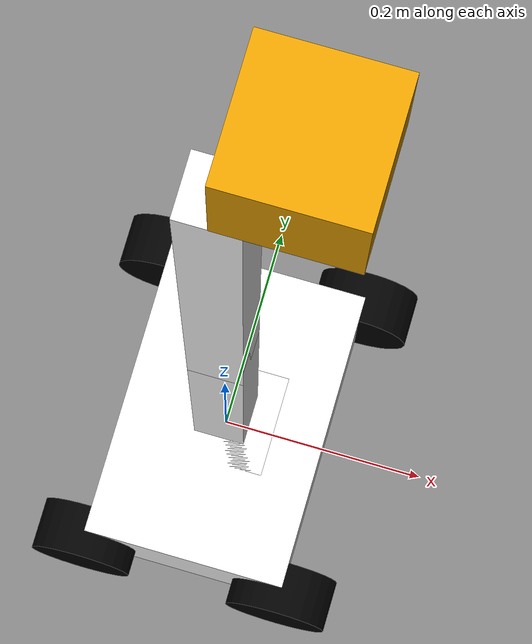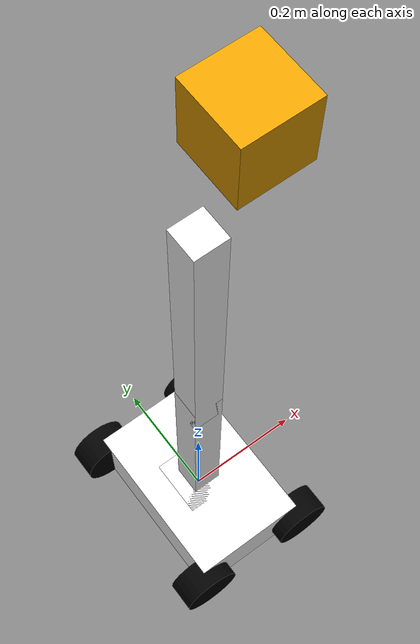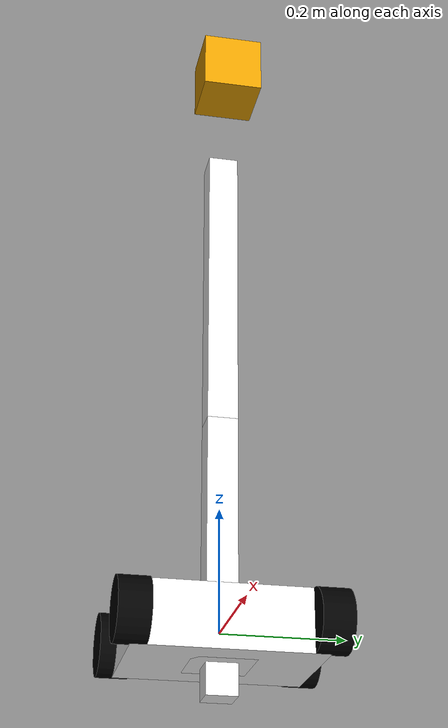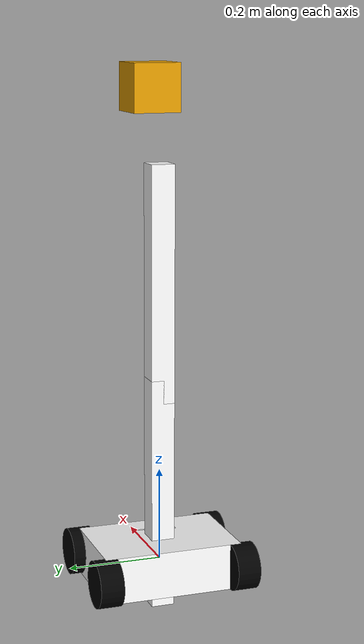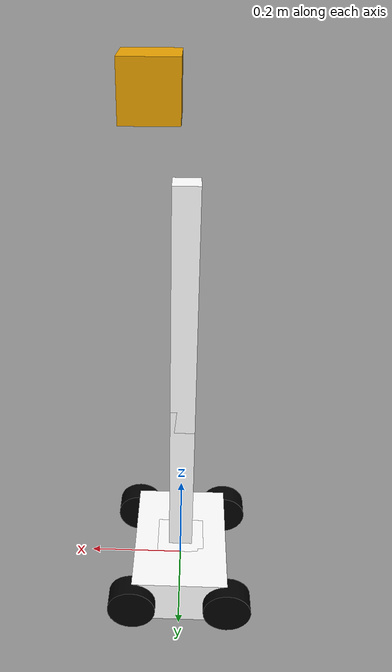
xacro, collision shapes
<?xml version="1.0"?>

<robot xmlns:xacro="http://www.ros.org/wiki/xacro"
 	xmlns:sensor="http://playerstage.sourceforge.net/gazebo/xmlschema/#sensor"
    	xmlns:controller="http://playerstage.sourceforge.net/gazebo/xmlschema/#controller"
    	xmlns:interface="http://playerstage.sourceforge.net/gazebo/xmlschema/#interface"
	name="robot1_xacro">

	<xacro:property name="length_wheel" value="0.05" />
	<xacro:property name="radius_wheel" value="0.05" />
	<xacro:macro name="default_inertial" params="mass">
               <inertial>
                       <mass value="${mass}" />
                       <inertia ixx="1.0" ixy="0.0" ixz="0.0"
                                iyy="1.0" iyz="0.0"
                                izz="1.0" />
               </inertial>
	</xacro:macro>

	<link name="base_link">
   		<visual>
			<geometry>
      				<box size="0.2 .3 .1"/>
     			</geometry>
			<origin rpy="0 0 1.54" xyz="0 0 0.05"/>
			<material name="white">
				<color rgba="1 1 1 1"/>
			</material>
   		</visual>
		<collision>
			<geometry>
       				<box size="0.2 .3 0.1"/>
			</geometry>
		</collision>
		<xacro:default_inertial mass="10"/>
 	</link>

 	<link name="wheel_1">
   		<visual>
     			<geometry>
       				<cylinder length="${length_wheel}" radius="${radius_wheel}"/>
     			</geometry>
			<origin rpy="0 0 0" xyz="0 0 0"/>
   			<material name="black">
				<color rgba="0 0 0 1"/>
			</material>
		</visual>
		<collision>
			<geometry>
       				<cylinder length="${length_wheel}" radius="${radius_wheel}"/>
			</geometry>
		</collision>
		<xacro:default_inertial mass="1"/>
 	</link>

 	<link name="wheel_2">
   		<visual>
     			<geometry>
       				<cylinder length="${length_wheel}" radius="${radius_wheel}"/>
     			</geometry>
			<origin rpy="0 0 0" xyz="0 0 0"/>
   			<material name="black"/>
   		</visual>
		<collision>
			<geometry>
       				<cylinder length="${length_wheel}" radius="${radius_wheel}"/>
			</geometry>
		</collision>
		<xacro:default_inertial mass="1"/>

 	</link>

 	<link name="wheel_3">
   		<visual>
     			<geometry>
       				<cylinder length="${length_wheel}" radius="${radius_wheel}"/>
     			</geometry>

			<origin rpy="0 0 0" xyz="0 0 0"/>
   			<material name="black"/>
   		</visual>
		<collision>
			<geometry>
       				<cylinder length="${length_wheel}" radius="${radius_wheel}"/>
			</geometry>
		</collision>
		<xacro:default_inertial mass="1"/>
 	</link>

 	<link name="wheel_4">
   		<visual>
     			<geometry>
       				<cylinder length="${length_wheel}" radius="${radius_wheel}"/>
     			</geometry>
			<origin rpy="0 0 0" xyz="0 0 0" />
   			<material name="black"/>
   		</visual>
		<collision>
			<geometry>
       				<cylinder length="${length_wheel}" radius="${radius_wheel}"/>
			</geometry>
		</collision>
		<xacro:default_inertial mass="1"/>

 	</link>

 <joint name="base_to_wheel1" type="continuous">
   <parent link="base_link"/>
   <child link="wheel_1"/>
   <origin rpy="1.5707 0 0" xyz="0.1 0.15 0"/>
   <axis xyz="0 0 1" />
 </joint>

 <joint name="base_to_wheel2" type="continuous">
   <axis xyz="0 0 1" />
   <anchor xyz="0 0 0" />
   <limit effort="100" velocity="100" />
   <parent link="base_link"/>
   <child link="wheel_2"/>
   <origin rpy="1.5707 0 0" xyz="-0.1 0.15 0"/>
</joint>

 <joint name="base_to_wheel3" type="continuous">
   <parent link="base_link"/>
   <axis xyz="0 0 1" />
   <child link="wheel_3"/>
   <origin rpy="1.5707 0 0" xyz="0.1 -0.15 0"/>
 </joint>

 <joint name="base_to_wheel4" type="continuous">
   <parent link="base_link"/>
   <axis xyz="0 0 1" />
   <child link="wheel_4"/>
   <origin rpy="1.5707 0 0" xyz="-0.1 -0.15 0"/>
 </joint>

 <!-- arm -->

	<link name="arm_base">
   		<visual>
     			<geometry>
       				<box size="0.1 .1 .1"/>
     			</geometry>
			<origin rpy="0 0 0" xyz="0 0 0.1"/>
			<material name="white">
				<color rgba="1 1 1 1"/>
			</material>
   		</visual>
		<collision>
			<geometry>
       				<box size="0.1 .1 .1"/>
			</geometry>
		</collision>
		<xacro:default_inertial mass="1"/>
 	</link>

	<joint name="base_to_arm_base" type="continuous">
		<parent link="base_link"/>
		<child link="arm_base"/>
		<axis xyz="0 0 1"/>
		<origin xyz="0 0 0"/>
	</joint>

	<link name="arm_1">
   		<visual>
     			<geometry>
       				<box size="0.05 .05 0.5"/>
     			</geometry>
			<origin rpy="0 0 0" xyz="0 0 0.25"/>
			<material name="white">
				<color rgba="1 1 1 1"/>
			</material>
   		</visual>
		<collision>
			<geometry>
       				<box size="0.05 .05 0.5"/>
			</geometry>
		</collision>
		<xacro:default_inertial mass="1"/>
 	</link>

	<joint name="arm_1_to_arm_base" type="revolute">
		<parent link="arm_base"/>
		<child link="arm_1"/>
		<axis xyz="1 0 0"/>
		<origin xyz="0 0 0.15"/>
		<limit effort ="1000.0" lower="-1.0" upper="1.0" velocity="0.5"/>
	</joint>

	<link name="arm_2">
   		<visual>
     			<geometry>
       				<box size="0.05 0.05 0.5"/>
     			</geometry>
			<origin rpy="0 0 0" xyz="0.06 0 0.15"/>
			<material name="white">
				<color rgba="1 1 1 1"/>
			</material>
   		</visual>
		<collision>
			<geometry>
       				<box size="0.05 .05 0.5"/>
			</geometry>
		</collision>
		<xacro:default_inertial mass="1"/>
 	</link>

	<joint name="arm_2_to_arm_1" type="revolute">
		<parent link="arm_1"/>
		<child link="arm_2"/>
		<axis xyz="1 0 0"/>
		<origin xyz="0.0 0 0.45"/>
		<limit effort ="1000.0" lower="-2.5" upper="2.5" velocity="0.5"/>
	</joint>

  <joint name="left_gripper_joint" type="revolute">
    <axis xyz="0 0 1"/>
    <limit effort="1000.0" lower="0.0" upper="0.548" velocity="0.5"/>
    <origin rpy="0 -1.57 0" xyz="0.06 0 0.4"/>
    <parent link="arm_2"/>
    <child link="left_gripper"/>
  </joint>

  <link name="left_gripper">
    <visual>
      <origin rpy="0 0 0" xyz="0 0 0"/>
      <geometry>
        <mesh filename="package://robot1_description/meshes/gripper_v0/l_finger.dae"/>
      </geometry>
    </visual>
	<collision>
			<geometry>
       				<box size="0.1 .1 .1"/>
			</geometry>
		</collision>
		<xacro:default_inertial mass="1"/>

  </link>

  <joint name="left_tip_joint" type="fixed">
    <parent link="left_gripper"/>
    <child link="left_tip"/>
  </joint>

  <link name="left_tip">
    <visual>
      <origin rpy="0.0 0 0" xyz="0.09137 0.00495 0"/>
      <geometry>
        <mesh filename="package://robot1_description/meshes/gripper_v0/l_finger_tip.dae"/>
      </geometry>
    </visual>
	<collision>
			<geometry>
       				<box size="0.1 .1 .1"/>
			</geometry>
		</collision>
		<xacro:default_inertial mass="1"/>

  </link>

  <joint name="right_gripper_joint" type="revolute">
    <axis xyz="0 0 -1"/>
    <limit effort="1000.0" lower="0.0" upper="0.548" velocity="0.5"/>
    <origin rpy="0 -1.57 0" xyz="0.06 0 0.4"/>
    <parent link="arm_2"/>
    <child link="right_gripper"/>
  </joint>

  <link name="right_gripper">
    <visual>
      <origin rpy="-3.1415 0 0" xyz="0 0 0"/>
      <geometry>
        <mesh filename="package://robot1_description/meshes/gripper_v0/l_finger.dae"/>
      </geometry>
    </visual>
	<collision>
			<geometry>
       				<box size="0.1 .1 .1"/>
			</geometry>
		</collision>
		<xacro:default_inertial mass="1"/>

  </link>

  <joint name="right_tip_joint" type="fixed">
    <parent link="right_gripper"/>
    <child link="right_tip"/>
  </joint>

  <link name="right_tip">
    <visual>
      <origin rpy="-3.1415 0 0" xyz="0.09137 0.00495 0"/>
      <geometry>
        <mesh filename="package://robot1_description/meshes/gripper_v0/l_finger_tip.dae"/>
      </geometry>
    </visual>
	<collision>
			<geometry>
       				<box size="0.1 .1 .1"/>
			</geometry>
		</collision>
		<xacro:default_inertial mass="1"/>

  </link>

</robot>
